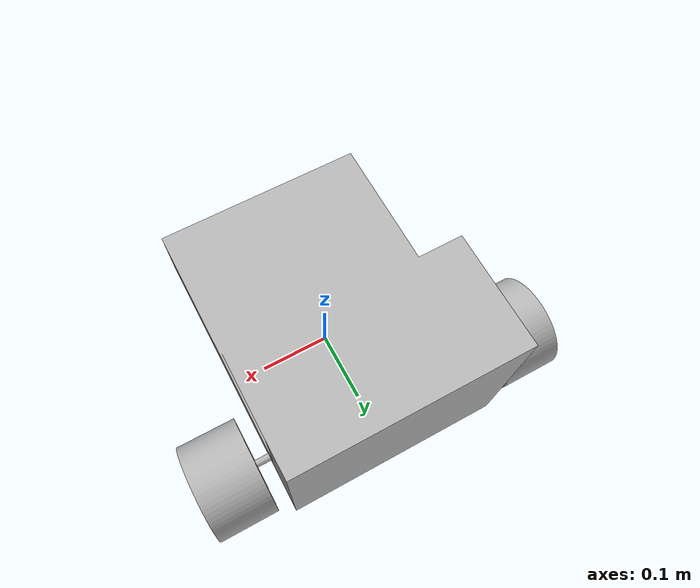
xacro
<?xml version="1.0" ?>
<robot name="Alpha" xmlns:xacro="http://www.ros.org/wiki/xacro">

<xacro:include filename="$(find alpha)/urdf/materials.xacro" />
<xacro:include filename="$(find alpha)/urdf/Alpha.trans" />
<xacro:include filename="$(find alpha)/urdf/Alpha.gazebo" />
<link name="base_link">
  <inertial>
    <origin rpy="0 0 0" xyz="-3.961964790390831e-17 0.1301754266577364 0.08991202943768775"/>
    <mass value="15.573111784819519"/>
    <inertia ixx="0.29608" ixy="-0.0" ixz="-0.0" iyy="0.177907" iyz="-0.050508" izz="0.35288"/>
  </inertial>
  <visual>
    <origin rpy="0 0 0" xyz="0 0 0"/>
    <geometry>
      <mesh filename="package://alpha/meshes/base_link.stl" scale="0.001 0.001 0.001"/>
    </geometry>
    <material name="silver"/>
  </visual>
  <collision>
    <origin rpy="0 0 0" xyz="0 0 0"/>
    <geometry>
      <mesh filename="package://alpha/meshes/base_link.stl" scale="0.001 0.001 0.001"/>
    </geometry>
  </collision>
</link>

<link name="right_wheel_1">
  <inertial>
    <origin rpy="0 0 0" xyz="0.040000000000000036 -0.0999999999999969 -1.3877787807814457e-17"/>
    <mass value="0.9816848723937386"/>
    <inertia ixx="0.002086" ixy="-0.0" ixz="-0.0" iyy="0.001567" iyz="0.0" izz="0.001567"/>
  </inertial>
  <visual>
    <origin rpy="0 0 0" xyz="0.25 -0.33 -0.065"/>
    <geometry>
      <mesh filename="package://alpha/meshes/right_wheel_1.stl" scale="0.001 0.001 0.001"/>
    </geometry>
    <material name="silver"/>
  </visual>
  <collision>
    <origin rpy="0 0 0" xyz="0.25 -0.33 -0.065"/>
    <geometry>
      <mesh filename="package://alpha/meshes/right_wheel_1.stl" scale="0.001 0.001 0.001"/>
    </geometry>
  </collision>
</link>

<link name="left_wheel_1">
  <inertial>
    <origin rpy="0 0 0" xyz="-0.040000000000000036 -0.0999999999999969 -1.3877787807814457e-17"/>
    <mass value="0.9816848723937386"/>
    <inertia ixx="0.002086" ixy="0.0" ixz="0.0" iyy="0.001567" iyz="0.0" izz="0.001567"/>
  </inertial>
  <visual>
    <origin rpy="0 0 0" xyz="-0.25 -0.33 -0.065"/>
    <geometry>
      <mesh filename="package://alpha/meshes/left_wheel_1.stl" scale="0.001 0.001 0.001"/>
    </geometry>
    <material name="silver"/>
  </visual>
  <collision>
    <origin rpy="0 0 0" xyz="-0.25 -0.33 -0.065"/>
    <geometry>
      <mesh filename="package://alpha/meshes/left_wheel_1.stl" scale="0.001 0.001 0.001"/>
    </geometry>
  </collision>
</link>

<link name="caster_wheel_1">
  <inertial>
    <origin rpy="0 0 0" xyz="5.592097830480738e-18 -0.24 -0.005564757795612454"/>
    <mass value="0.19948722804219185"/>
    <inertia ixx="3.5e-05" ixy="0.0" ixz="0.0" iyy="3.5e-05" iyz="0.0" izz="6.5e-05"/>
  </inertial>
  <visual>
    <origin rpy="0 0 0" xyz="-0.0 -0.2 -0.015"/>
    <geometry>
      <mesh filename="package://alpha/meshes/caster_wheel_1.stl" scale="0.001 0.001 0.001"/>
    </geometry>
    <material name="silver"/>
  </visual>
  <collision>
    <origin rpy="0 0 0" xyz="-0.0 -0.2 -0.015"/>
    <geometry>
      <mesh filename="package://alpha/meshes/caster_wheel_1.stl" scale="0.001 0.001 0.001"/>
    </geometry>
  </collision>
</link>

<joint name="Rev1" type="continuous">
  <origin rpy="0 0 0" xyz="-0.25 0.33 0.065"/>
  <parent link="base_link"/>
  <child link="right_wheel_1"/>
  <axis xyz="1 0 0"/>
</joint>

<joint name="Rev2" type="continuous">
  <origin rpy="0 0 0" xyz="0.25 0.33 0.065"/>
  <parent link="base_link"/>
  <child link="left_wheel_1"/>
  <axis xyz="1 0 0"/>
</joint>

<joint name="Rigid3" type="fixed">
  <origin rpy="0 0 0" xyz="0.0 0.2 0.015"/>
  <parent link="base_link"/>
  <child link="caster_wheel_1"/>
</joint>

</robot>

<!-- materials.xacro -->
<robot name="Alpha" xmlns:xacro="http://www.ros.org/wiki/xacro" >

<material name="silver">
  <color rgba="0.700 0.700 0.700 1.000"/>
</material>

</robot>

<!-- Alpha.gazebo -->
<robot name="Alpha" xmlns:xacro="http://www.ros.org/wiki/xacro" >

<xacro:property name="body_color" value="Gazebo/Turquoise" />
<xacro:property name="wheel_color" value="Gazebo/Black" />
<xacro:property name="caster_color" value="Gazebo/Blue" />

<gazebo>
  <plugin filename="libgazebo_ros_control.so" name="control"/>
</gazebo>
<gazebo reference="base_link">
  <material>${body_color}</material>
  <mu1>0.2</mu1>
  <mu2>0.2</mu2>
  <selfCollide>true</selfCollide>
  <gravity>true</gravity>
</gazebo>

<gazebo reference="right_wheel_1">
  <material>${wheel_color}</material>
  <mu1>1000.0</mu1>
  <mu2>1000.0</mu2>
  <selfCollide>true</selfCollide>
</gazebo>

<gazebo reference="left_wheel_1">
  <material>${wheel_color}</material>
  <mu1>1000.0</mu1>
  <mu2>1000.0</mu2>
  <selfCollide>true</selfCollide>
</gazebo>

<gazebo reference="caster_wheel_1">
  <material>${caster_color}</material>
  <mu1>0.01</mu1>
  <mu2>0.01</mu2>
  <selfCollide>true</selfCollide>
</gazebo>

<gazebo>
  <plugin name="differential_drive_controller" filename="libgazebo_ros_diff_drive.so">

    <!-- Plugin update rate in Hz -->
    <updateRate>10</updateRate>

    <!-- Name of left joint, defaults to `left_joint` -->
    <leftJoint>Rev2</leftJoint>

    <!-- Name of right joint, defaults to `right_joint` -->
    <rightJoint>Rev1</rightJoint>

    <!-- The distance from the center of one wheel to the other, in meters, defaults to 0.34 m -->
    <wheelSeparation>0.3</wheelSeparation>

    <!-- Diameter of the wheels, in meters, defaults to 0.15 m -->
    <wheelDiameter>0.0410</wheelDiameter>

    <!-- Wheel acceleration, in rad/s^2, defaults to 0.0 rad/s^2 -->
    <wheelAcceleration>1.0</wheelAcceleration>

    <!-- Maximum torque which the wheels can produce, in Nm, defaults to 5 Nm -->
    <wheelTorque>20</wheelTorque>

    <!-- Topic to receive geometry_msgs/Twist message commands, defaults to `cmd_vel` -->
    <commandTopic>cmd_vel</commandTopic>

    <!-- Topic to publish nav_msgs/Odometry messages, defaults to `odom` -->
    <odometryTopic>odom</odometryTopic>

    <!-- Odometry frame, defaults to `odom` -->
    <odometryFrame>odom</odometryFrame>

    <!-- Robot frame to calculate odometry from, defaults to `base_footprint` -->
    <robotBaseFrame>base_link</robotBaseFrame>

    <!-- Odometry source, 0 for ENCODER, 1 for WORLD, defaults to WORLD -->
    <odometrySource>1</odometrySource>

    <!-- Set to true to publish transforms for the wheel links, defaults to false -->
    <publishWheelTF>true</publishWheelTF>

    <!-- Set to true to publish transforms for the odometry, defaults to true -->
    <publishOdom>true</publishOdom>

    <!-- Set to true to publish sensor_msgs/JointState on /joint_states for the wheel joints, defaults to false -->
    <publishWheelJointState>true</publishWheelJointState>

    <!-- Set to true to swap right and left wheels, defaults to true -->
    <legacyMode>false</legacyMode>
  </plugin>
</gazebo>

</robot>
